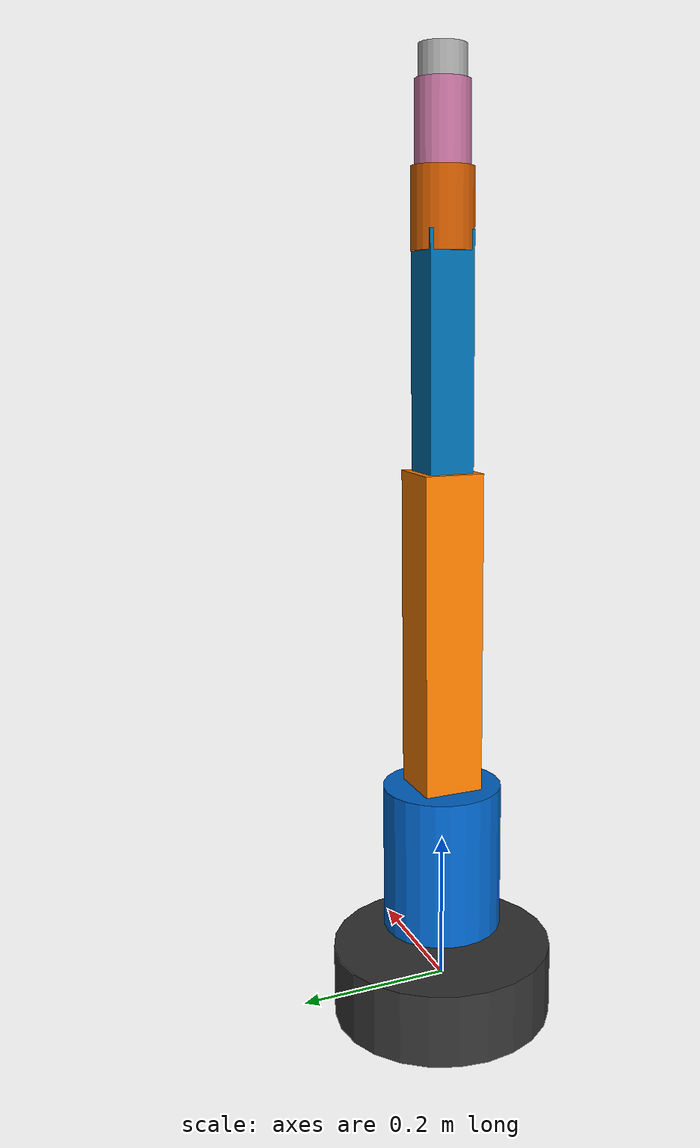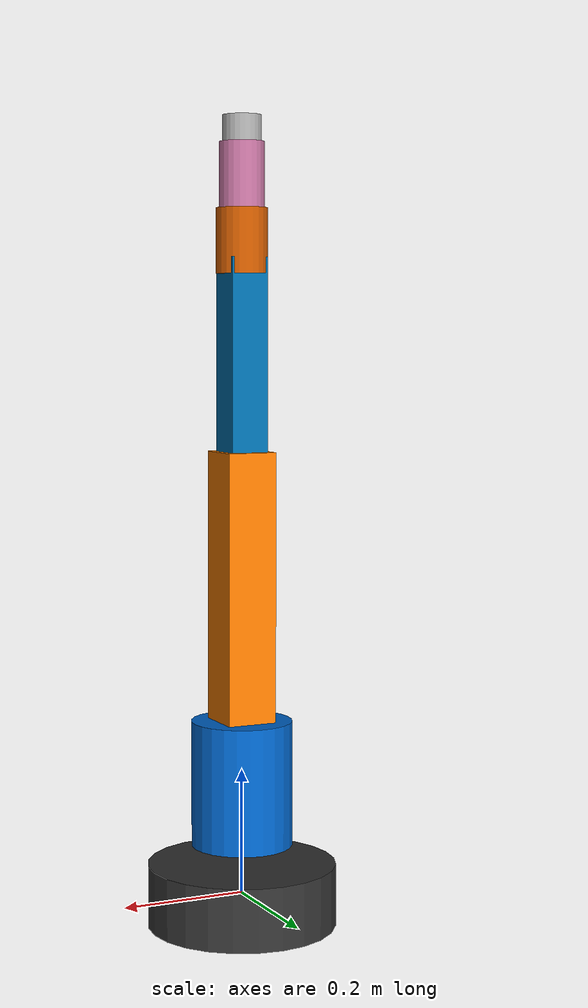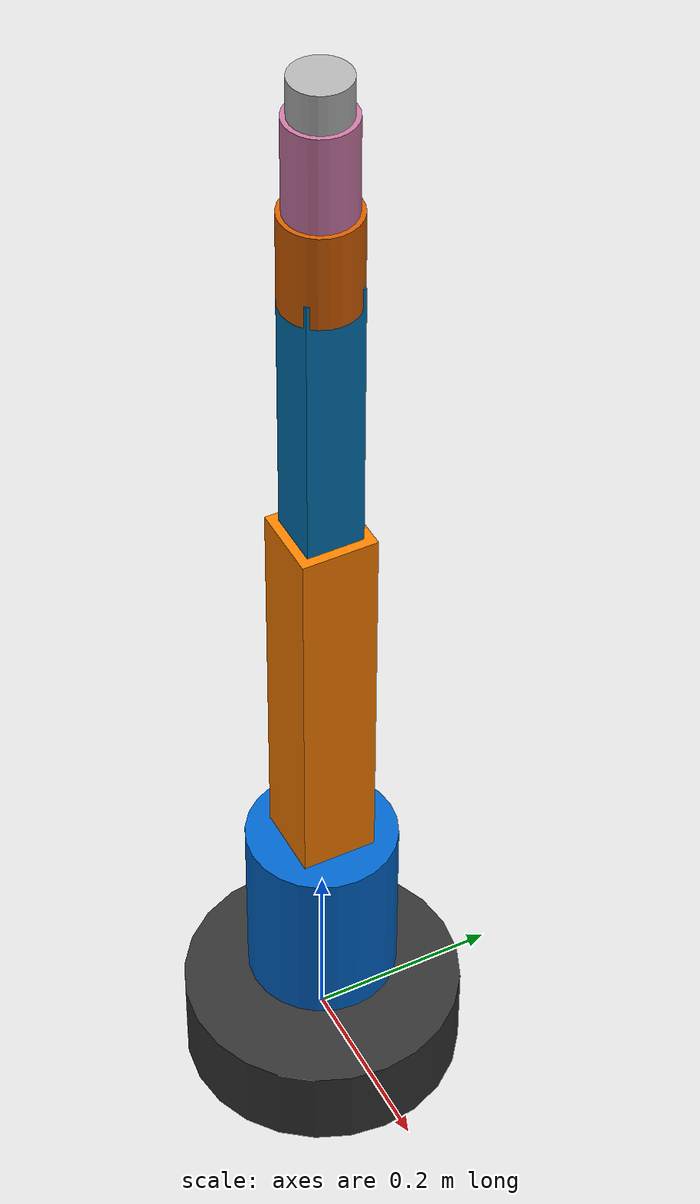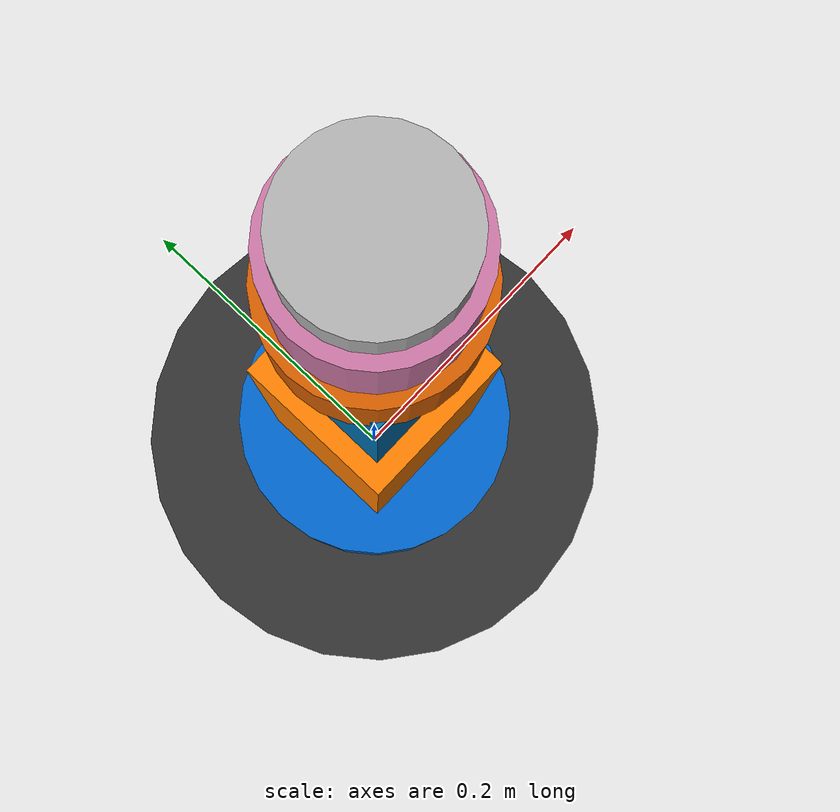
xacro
<?xml version="1.0"?>
<robot name="arm_6dof" xmlns:xacro="http://www.ros.org/wiki/xacro">

  <!-- Base Link -->
  <link name="world"/>

  <joint name="world_joint" type="fixed">
    <parent link="world"/>
    <child link="base_link"/>
    <origin xyz="0 0 0" rpy="0 0 0"/>
  </joint>

  <link name="base_link">
    <visual>
      <geometry><cylinder length="0.1" radius="0.15"/></geometry>
      <material name="dark_gray"><color rgba="0.2 0.2 0.2 1.0"/></material>
    </visual>
  </link>

  <!-- Joint 1: Base Swivel -->
  <joint name="joint_1" type="revolute">
    <parent link="base_link"/>
    <child link="link_1"/>
    <origin xyz="0 0 0.08" rpy="0 0 0"/>
    <axis xyz="0 0 1"/>
    <limit lower="-3.14159" upper="3.14159" effort="150.0" velocity="3.15"/>
  </joint>

  <link name="link_1">
    <visual>
      <origin xyz="0 0 0.1" rpy="0 0 0"/>
      <geometry><cylinder length="0.2" radius="0.08"/></geometry>
      <material name="blue"><color rgba="0.0 0.4 0.8 1.0"/></material>
    </visual>
  </link>

  <!-- Joint 2: Shoulder -->
  <joint name="joint_2" type="revolute">
    <parent link="link_1"/>
    <child link="link_2"/>
    <origin xyz="0 0 0.2" rpy="0 0 0"/>
    <axis xyz="0 1 0"/>
    <limit lower="-2.0" upper="2.0" effort="150.0" velocity="3.15"/>
  </joint>

  <link name="link_2">
    <visual>
      <origin xyz="0 0 0.2" rpy="0 0 0"/>
      <geometry><box size="0.08 0.08 0.45"/></geometry>
      <material name="orange"><color rgba="1.0 0.5 0.0 1.0"/></material>
    </visual>
  </link>

  <!-- Joint 3: Elbow -->
  <joint name="joint_3" type="revolute">
    <parent link="link_2"/>
    <child link="link_3"/>
    <origin xyz="0 0 0.4" rpy="0 0 0"/>
    <axis xyz="0 1 0"/>
    <limit lower="-2.5" upper="2.5" effort="100.0" velocity="3.15"/>
  </joint>

  <link name="link_3">
    <visual>
      <origin xyz="0 0 0.15" rpy="0 0 0"/>
      <geometry><box size="0.06 0.06 0.35"/></geometry>
    </visual>
  </link>

  <!-- Joint 4: Wrist Pitch -->
  <joint name="joint_4" type="revolute">
    <parent link="link_3"/>
    <child link="link_4"/>
    <origin xyz="0 0 0.3" rpy="0 0 0"/>
    <axis xyz="0 1 0"/>
    <limit lower="-3.14" upper="3.14" effort="50.0" velocity="3.2"/>
  </joint>

  <link name="link_4">
    <visual>
      <origin xyz="0 0 0.05" rpy="0 0 0"/>
      <geometry><cylinder length="0.1" radius="0.04"/></geometry>
    </visual>
  </link>

  <!-- Joint 5: Wrist Roll -->
  <joint name="joint_5" type="revolute">
    <parent link="link_4"/>
    <child link="link_5"/>
    <origin xyz="0 0 0.1" rpy="0 0 0"/>
    <axis xyz="1 0 0"/>
    <limit lower="-3.14" upper="3.14" effort="50.0" velocity="3.2"/>
  </joint>

  <link name="link_5">
    <visual>
      <origin xyz="0 0 0.05" rpy="0 0 0"/>
      <geometry><cylinder length="0.1" radius="0.035"/></geometry>
    </visual>
  </link>

  <!-- Joint 6: Tool Flange / End Effector -->
  <joint name="joint_6" type="revolute">
    <parent link="link_5"/>
    <child link="end_effector"/>
    <origin xyz="0 0 0.1" rpy="0 0 0"/>
    <axis xyz="0 0 1"/>
    <limit lower="-6.28" upper="6.28" effort="30.0" velocity="3.2"/>
  </joint>

  <link name="end_effector">
    <visual>
      <origin xyz="0 0 0.02" rpy="0 0 0"/>
      <geometry><cylinder length="0.04" radius="0.03"/></geometry>
    </visual>
  </link>

</robot>
